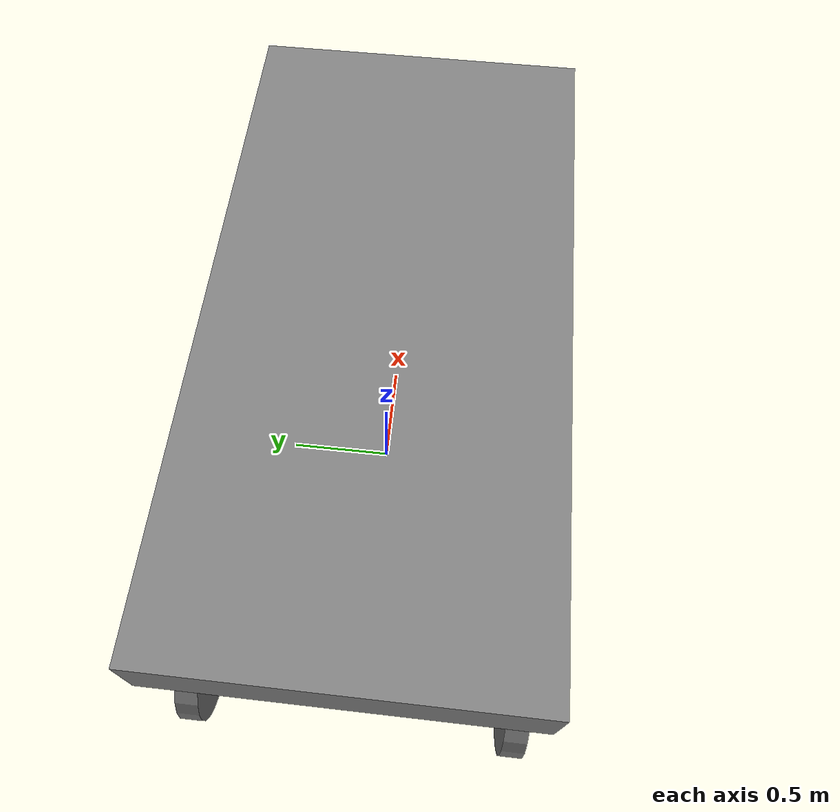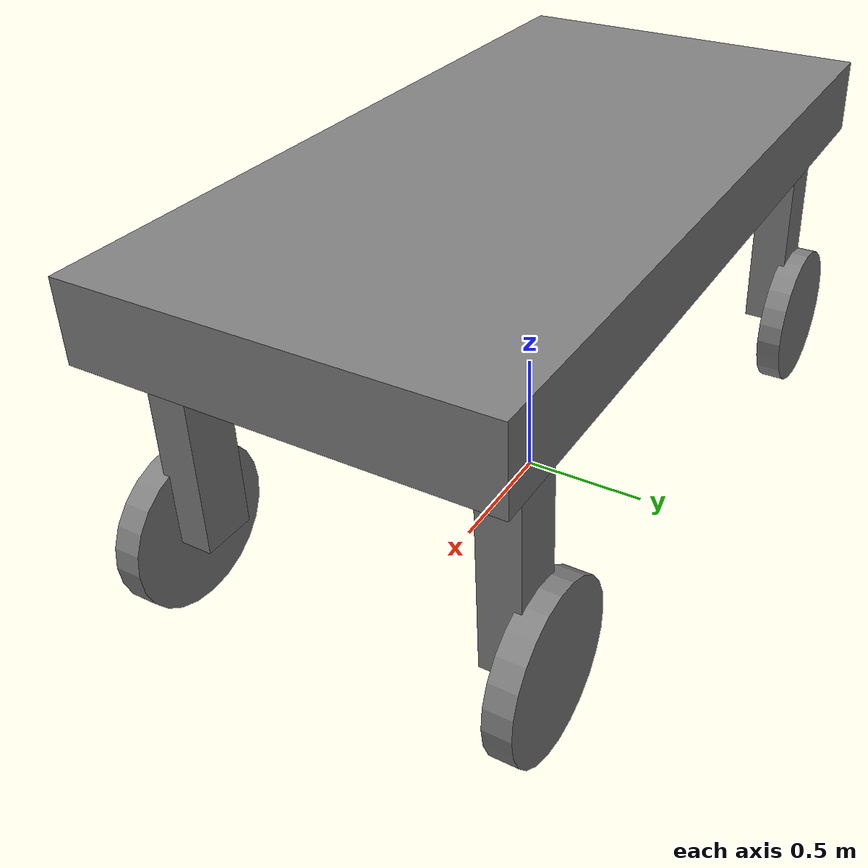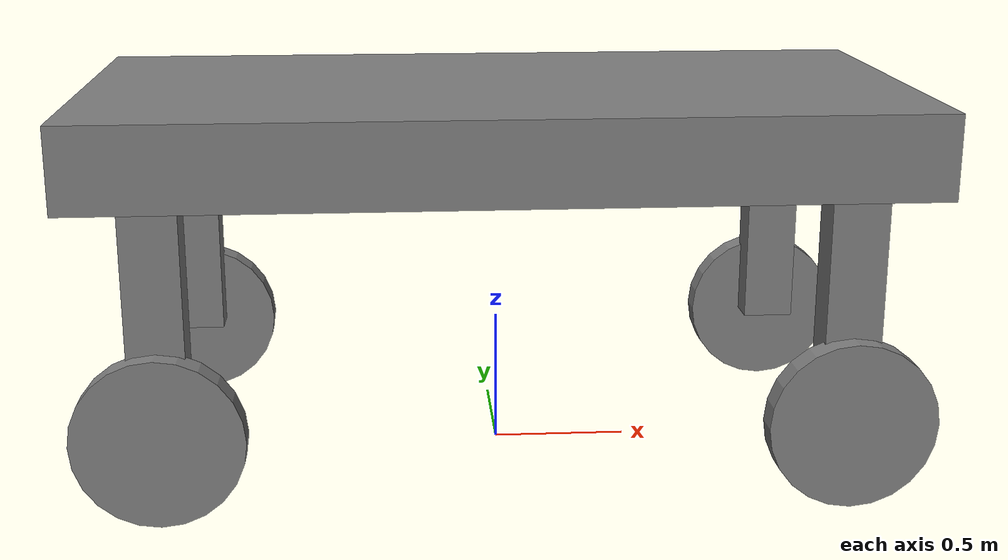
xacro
<?xml version="1.0"?>
<robot xmlns:xacro="http://www.ros.org/wiki/xacro" name="robot">

    <!-- REFER TO IMAGES FOLDER FOR VISUAL REPRESENTATION OF THE ROBOT -->
    <xacro:include filename="wheel_module_macro.xacro" />
    <xacro:include filename="color_macro.xacro" />
    <xacro:include filename="inertia_macro.xacro" />

    <!-- CONSTANTS -->
    <xacro:property name="PI" value="3.1415926535897931"/>

    <!-- Chassis dimensions -->
    <xacro:property name="chassis_mass" value="30.0"/> <!-- kilograms -->
    <xacro:property name="chassis_length" value="3"/> <!-- meters -->
    <xacro:property name="chassis_width" value="1.5"/>
    <xacro:property name="chassis_height" value="0.3"/>

    <!-- Wheel Module dimensions -->
    <xacro:property name="base_to_module_x" value="1.2"/> <!-- meters -->
    <xacro:property name="base_to_module_y" value="0.6"/>
    <xacro:property name="module_width_x" value="0.2"/>
    <xacro:property name="module_width_y" value="0.15"/>
    <xacro:property name="module_height" value="0.8"/>

    <!-- Wheel dimensions -->
    <xacro:property name="wheel_mass" value="1.0"/> <!-- kilograms -->
    <xacro:property name="wheel_radius" value="0.3"/> <!-- meters -->
    <xacro:property name="wheel_width" value="0.1"/>

    <!-- Define a base links for the robot. base_link and base_footprint needed for Nav2 -->
    <link name="base_footprint"/>

    <joint name="base_joint" type="fixed">
        <parent link="base_footprint"/>
        <child link="base_link"/>
        <origin xyz="0 0 ${module_height + wheel_radius}" rpy="0 0 0"/>
    </joint>

    <link name="base_link"/>

    <!-- Define a chassis link for the robot -->
    <joint name="chassis_joint" type="fixed">
        <parent link="base_link"/>
        <child link="chassis"/>
        <!-- Place the chassis at half of chassis height above the base link -->
        <origin xyz="0 0 ${chassis_height/2.0}" rpy="0 0 0"/>
    </joint>

    <link name="chassis">
        <visual>
            <origin xyz="0 0 0"/>
            <geometry>
                <box size="${chassis_length} ${chassis_width} ${chassis_height}"/>
            </geometry>
            <material name="grey"/>
        </visual>
        <collision>
            <origin xyz="0 0 0"/>
            <geometry>
                <box size="${chassis_length} ${chassis_width} ${chassis_height}"/>
            </geometry>
        </collision>
        <xacro:inertial_box mass="${chassis_mass}" x="${chassis_length}" y="${chassis_width}" z="${chassis_height}">
            <origin xyz="0 0 0" rpy="0 0 0"/>
        </xacro:inertial_box>
    </link>

    <!-- Define joints to connect static links to the base link -->
    <joint name="FL_joint" type="fixed">
        <parent link="base_link"/>
        <child link="front_left"/>
        <origin xyz="${base_to_module_x} ${base_to_module_y} 0" rpy="0 0 0"/>
    </joint>

    <joint name="FR_joint" type="fixed">
        <parent link="base_link"/>
        <child link="front_right"/>
        <origin xyz="${base_to_module_x} -${base_to_module_y} 0" rpy="0 0 0"/>
    </joint>

    <joint name="RL_joint" type="fixed">
        <parent link="base_link"/>
        <child link="rear_left"/>
        <origin xyz="-${base_to_module_x} ${base_to_module_y} 0" rpy="0 0 0"/>
    </joint>

    <joint name="RR_joint" type="fixed">
        <parent link="base_link"/>
        <child link="rear_right"/>
        <origin xyz="-${base_to_module_x} -${base_to_module_y} 0" rpy="0 0 0"/>
    </joint>

    <!-- Define 4 static links which will be used to connect the wheel modules to the base link -->
    <link name="front_left">
    </link>
    <link name="front_right">
    </link>
    <link name="rear_left">
    </link>
    <link name="rear_right">
    </link>

    <!-- Define the wheel modules -->
    <!-- params="parent_name mass radius width module_len module_width_x module_width_y cx cy cz side" -->
    <!-- NOTE: cx,cy,cz are the coordinates of the child link's center w.r.t the parent link -->
    <xacro:wheel_assembly parent_name="front_left" mass="${wheel_mass}" radius="${wheel_radius}" width="${wheel_width}" module_len="${module_height}" module_width_x="${module_width_x}" module_width_y="${module_width_y}" cx="0" cy="0" cz="${-module_height/2.0}" side="left"/>
    <xacro:wheel_assembly parent_name="front_right" mass="${wheel_mass}" radius="${wheel_radius}" width="${wheel_width}" module_len="${module_height}" module_width_x="${module_width_x}" module_width_y="${module_width_y}" cx="0" cy="0" cz="${-module_height/2.0}" side="right"/>
    <xacro:wheel_assembly parent_name="rear_left" mass="${wheel_mass}" radius="${wheel_radius}" width="${wheel_width}" module_len="${module_height}" module_width_x="${module_width_x}" module_width_y="${module_width_y}" cx="0" cy="0" cz="${-module_height/2.0}" side="left"/>
    <xacro:wheel_assembly parent_name="rear_right" mass="${wheel_mass}" radius="${wheel_radius}" width="${wheel_width}" module_len="${module_height}" module_width_x="${module_width_x}" module_width_y="${module_width_y}" cx="0" cy="0" cz="${-module_height/2.0}" side="right"/>

</robot>

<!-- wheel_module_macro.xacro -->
<robot xmlns:xacro="http://www.ros.org/wiki/xacro">

    <include filename="color_macro.xacro"/>
    <include filename="inertia_macro.xacro"/>

    <xacro:macro name="wheel_assembly" params="parent_name mass radius width module_len module_width_x module_width_y cx cy cz side">
        <joint name="wheel_module_${parent_name}_joint" type="fixed">
            <parent link="${parent_name}"/>
            <child link="wheel_module_${parent_name}"/>
            <origin xyz="${cx} ${cy} ${cz}" rpy="0 0 0"/> <!-- This origin is where child link is placed w.r.t parent link -->
        </joint>

        <!-- Define the wheel module link -->
        <link name="wheel_module_${parent_name}">
            <visual>
                <origin xyz="0 0 0"/> <!-- This origin is w.r.t the wheel_module_${parent_name} link -->
                <geometry>
                    <box size="${module_width_x} ${module_width_y} ${module_len}"/>
                </geometry>
                <material name="grey"/>
            </visual>
            <collision>
                <origin xyz="0 0 0"/> <!-- This origin is w.r.t the wheel_module_${parent_name} link -->
                <geometry>
                    <box size="${module_width_x} ${module_width_y} ${module_len}"/>
                </geometry>
            </collision>
            <!-- !Hardcoded mass -->
            <xacro:inertial_box mass="2.0" x="${module_width_x}" y="${module_width_y}" z="${module_len}">
                <origin xyz="0 0 0" rpy="0 0 0"/>
            </xacro:inertial_box>
        </link>

        <!-- Define the wheel link -->
        <xacro:if value="${side == 'left'}">
            <xacro:property name="wheel_position_y" value="${width}"/>
            <xacro:property name="wheel_pitch" value="-${PI/2}"/>
        </xacro:if>
        <xacro:if value="${side == 'right'}">
            <xacro:property name="wheel_position_y" value="-${width}"/>
            <xacro:property name="wheel_pitch" value="${PI/2}"/>
        </xacro:if>

        <joint name="wheel_${parent_name}_joint" type="continuous">
            <parent link="wheel_module_${parent_name}"/>
            <child link="wheel_${parent_name}"/>
            <origin xyz="0 ${wheel_position_y} ${-module_len/2.0}" rpy="${wheel_pitch} 0 0"/>
            <axis xyz="0 0 1"/>
        </joint>

        <link name="wheel_${parent_name}">
            <visual>
                <geometry>
                    <cylinder radius="${radius}" length="${width}"/>
                </geometry>
                <material name="grey"/>
            </visual>
            <collision>
                <geometry>
                    <cylinder radius="${radius}" length="${width}"/>
                </geometry>
            </collision>
            <xacro:inertial_cylinder mass="${mass}" length="${width}" radius="${radius}">
                <origin xyz="0 0 0" rpy="0 0 0"/>
            </xacro:inertial_cylinder>
        </link>

    </xacro:macro>

</robot>

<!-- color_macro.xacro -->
<robot xmlns:xacro="http://www.ros.org/wiki/xacro" >

    <!-- Define Common Colors to be used elsewhere -->

    <material name="black">
        <color rgba="0.0 0.0 0.0 1.0"/>
    </material>

    <material name="dark">
        <color rgba="0.3 0.3 0.3 1.0"/>
    </material>

    <material name="light_black">
        <color rgba="0.4 0.4 0.4 1.0"/>
    </material>

    <material name="blue">
        <color rgba="0.0 0.0 0.8 1.0"/>
    </material>

    <material name="green">
        <color rgba="0.0 0.8 0.0 1.0"/>
    </material>

    <material name="grey">
        <color rgba="0.5 0.5 0.5 1.0"/>
    </material>

    <material name="orange">
        <color rgba="1.0 0.4235 0.0392 1.0"/>
    </material>

    <material name="brown">
        <color rgba="0.8706 0.8118 0.7647 1.0"/>
    </material>

    <material name="red">
        <color rgba="0.8 0.0 0.0 1.0"/>
    </material>

    <material name="white">
        <color rgba="1.0 1.0 1.0 1.0"/>
    </material>

</robot>
